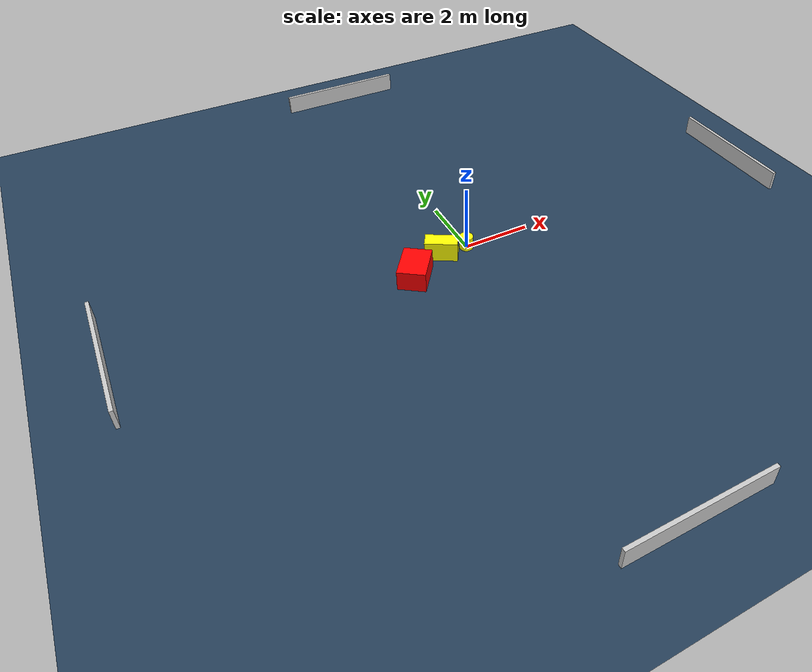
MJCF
<?xml version="1.0" ?>
<mujoco model="generated_environment">
  <option timestep="0.01" integrator="RK4" cone="elliptic"/>
  <default>
    <geom density="1"/>
  </default>
  <asset>
    <texture builtin="gradient" height="3072" name="skybox" rgb1="0.3 0.5 0.7" rgb2="0 0 0" type="skybox" width="512"/>
    <texture builtin="checker" height="300" name="groundplane" rgb1="0.2 0.3 0.4" rgb2="0.1 0.2 0.3" type="2d" width="300"/>
    <material name="groundplane" reflectance="0.2" texrepeat="5 5" texture="groundplane"/>
  </asset>
  <worldbody>
    <light dir="0 0 -1" directional="true" pos="0 0 1.5"/>
    <geom condim="3" friction="0.5 0.005 0.001" material="groundplane" name="floor" pos="0 0 0" size="0 0 0.05" type="plane"/>
    <body name="walls">
      <geom name="wall_1" condim="4" pos="-10.0 0.0 0.3" rgba="0.800000011920929 0.800000011920929 0.800000011920929 1.0" size="0.05 2.0 0.3" type="box"/>
      <geom name="wall_2" condim="4" pos="10.0 0.0 0.3" rgba="0.800000011920929 0.800000011920929 0.800000011920929 1.0" size="0.05 2.0 0.3" type="box"/>
      <geom name="wall_3" condim="4" pos="0.0 -10.0 0.3" rgba="0.800000011920929 0.800000011920929 0.800000011920929 1.0" size="2.0 0.05 0.3" type="box"/>
      <geom name="wall_4" condim="4" pos="0.0 10.0 0.3" rgba="0.800000011920929 0.800000011920929 0.800000011920929 1.0" size="2.0 0.05 0.3" type="box"/>
    </body>
    <body name="robot">
      <joint name="joint_x" type="slide" pos="0 0 0" axis="1 0 0"/>
      <joint name="joint_y" type="slide" pos="0 0 0" axis="0 1 0"/>
      <geom name="robot" type="cylinder" pos="0.0 0.0 0.2" size="0.2 0.2 0.0" mass="5.0" friction="1.0 0.005 0.0001" condim="4" rgba="1.0 1.0 0.0 1.0"/>
    </body>
    <body name="obstacle_1_movable">
      <geom name="obstacle_1_movable" condim="4" pos="-0.8112012866467064 -0.021113159769407665 0.3" euler="0 0 149.447833971289" friction="0.0 0.005 0.001" rgba="1.0 1.0 0.0 1.0" size="0.4726039805827041 0.21691740900749612 0.3" type="box" mass="0.1"/>
      <joint type="free"/>
    </body>
    <body name="obstacle_2_static">
      <geom name="obstacle_2_static" condim="4" pos="-1.881353229580223 -0.51934791560873 0.3" euler="0 0 144.14494719232258" friction="0.0 0.005 0.001" rgba="1.0 0.0 0.0 1.0" size="0.40264901657520497 0.5380636601896815 0.3" type="box"/>
    </body>
  </worldbody>
  <actuator>
    <motor name="actuator_x" joint="joint_x" gear="1" ctrlrange="-1 1"/>
    <motor name="actuator_y" joint="joint_y" gear="1" ctrlrange="-1 1"/>
  </actuator>
</mujoco>
